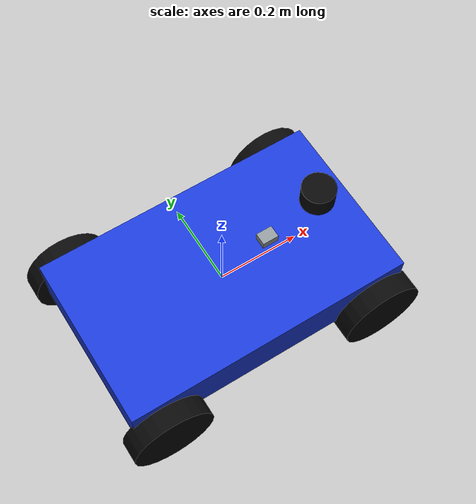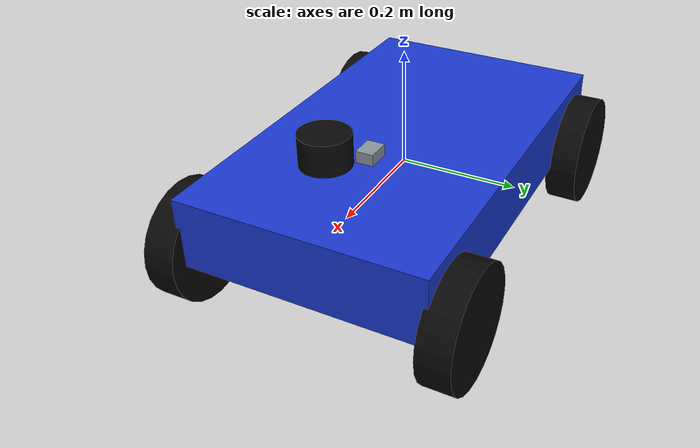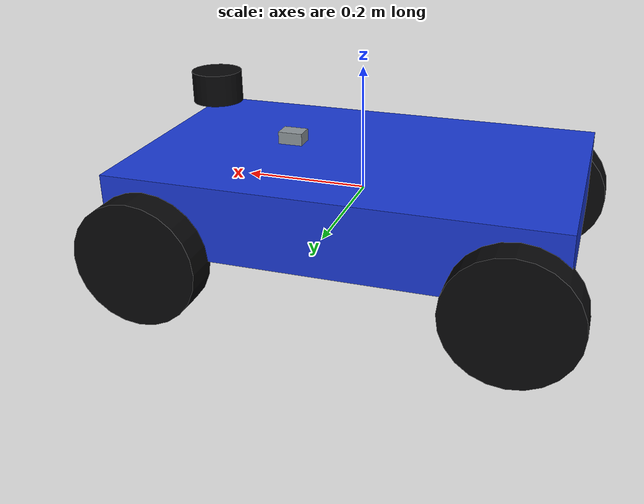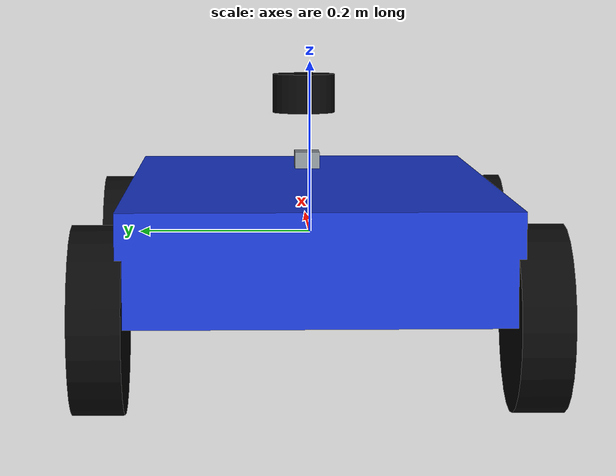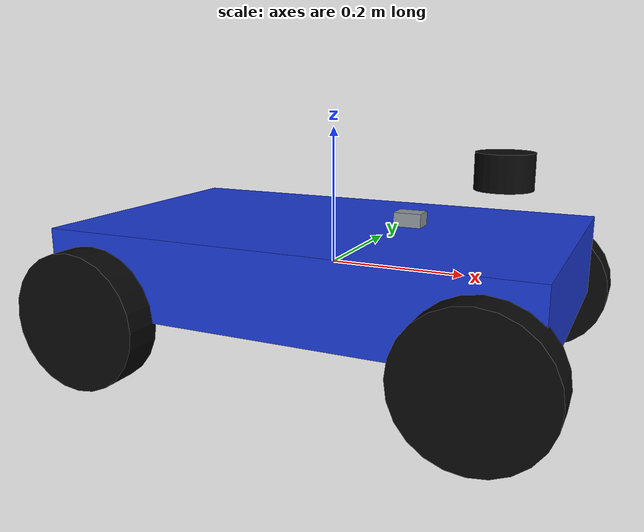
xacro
<?xml version="1.0"?>
<robot name="four_wheel_car" xmlns:xacro="http://www.ros.org/wiki/xacro">
  <xacro:property name="base_length" value="0.70"/>
  <xacro:property name="base_width" value="0.42"/>
  <xacro:property name="base_height" value="0.12"/>
  <xacro:property name="wheel_radius" value="0.10"/>
  <xacro:property name="wheel_width" value="0.055"/>
  <xacro:property name="wheelbase" value="0.56"/>
  <xacro:property name="track" value="0.46"/>
  <xacro:property name="front_x" value="${wheelbase * 0.5}"/>
  <xacro:property name="rear_x" value="${-wheelbase * 0.5}"/>
  <xacro:property name="left_y" value="${track * 0.5}"/>
  <xacro:property name="right_y" value="${-track * 0.5}"/>
  <xacro:property name="wheel_z" value="${-(base_height * 0.5)}"/>

  <material name="body_blue">
    <color rgba="0.10 0.22 0.82 1.0"/>
  </material>
  <material name="dark_grey">
    <color rgba="0.03 0.03 0.035 1.0"/>
  </material>
  <material name="metal_grey">
    <color rgba="0.55 0.58 0.60 1.0"/>
  </material>

  <xacro:macro name="box_inertia" params="mass x y z">
    <inertial>
      <mass value="${mass}"/>
      <inertia
        ixx="${mass * (y * y + z * z) / 12.0}"
        ixy="0.0"
        ixz="0.0"
        iyy="${mass * (x * x + z * z) / 12.0}"
        iyz="0.0"
        izz="${mass * (x * x + y * y) / 12.0}"/>
    </inertial>
  </xacro:macro>

  <xacro:macro name="wheel_inertia" params="mass radius width">
    <inertial>
      <mass value="${mass}"/>
      <inertia
        ixx="${mass * (3.0 * radius * radius + width * width) / 12.0}"
        ixy="0.0"
        ixz="0.0"
        iyy="${0.5 * mass * radius * radius}"
        iyz="0.0"
        izz="${mass * (3.0 * radius * radius + width * width) / 12.0}"/>
    </inertial>
  </xacro:macro>

  <xacro:macro name="wheel_link" params="name">
    <link name="${name}">
      <xacro:wheel_inertia mass="0.45" radius="${wheel_radius}" width="${wheel_width}"/>
      <visual>
        <origin xyz="0 0 0" rpy="1.57079632679 0 0"/>
        <geometry>
          <cylinder radius="${wheel_radius}" length="${wheel_width}"/>
        </geometry>
        <material name="dark_grey"/>
      </visual>
      <collision>
        <origin xyz="0 0 0" rpy="1.57079632679 0 0"/>
        <geometry>
          <cylinder radius="${wheel_radius}" length="${wheel_width}"/>
        </geometry>
      </collision>
    </link>
    <gazebo reference="${name}">
      <mu1>1.0</mu1>
      <mu2>1.0</mu2>
    </gazebo>
  </xacro:macro>

  <link name="base_footprint"/>

  <joint name="base_footprint_joint" type="fixed">
    <parent link="base_footprint"/>
    <child link="base_link"/>
    <origin xyz="0 0 0" rpy="0 0 0"/>
  </joint>

  <link name="base_link">
    <xacro:box_inertia mass="8.0" x="${base_length}" y="${base_width}" z="${base_height}"/>
    <visual>
      <origin xyz="0 0 0" rpy="0 0 0"/>
      <geometry>
        <box size="${base_length} ${base_width} ${base_height}"/>
      </geometry>
      <material name="body_blue"/>
    </visual>
    <collision>
      <origin xyz="0 0 0" rpy="0 0 0"/>
      <geometry>
        <box size="${base_length} ${base_width} ${base_height}"/>
      </geometry>
    </collision>
  </link>

  <link name="imu_link">
    <xacro:box_inertia mass="0.05" x="0.04" y="0.03" z="0.02"/>
    <visual>
      <origin xyz="0 0 0" rpy="0 0 0"/>
      <geometry>
        <box size="0.04 0.03 0.02"/>
      </geometry>
      <material name="metal_grey"/>
    </visual>
  </link>

  <joint name="imu_joint" type="fixed">
    <parent link="base_link"/>
    <child link="imu_link"/>
    <origin xyz="0.12 0 0.075" rpy="0 0 0"/>
  </joint>

  <link name="front_left_steer_link">
    <xacro:box_inertia mass="0.20" x="0.05" y="0.05" z="0.06"/>
    <visual>
      <origin xyz="0 0 0" rpy="0 0 0"/>
      <geometry>
        <box size="0.05 0.05 0.06"/>
      </geometry>
      <material name="metal_grey"/>
    </visual>
  </link>
  <link name="front_right_steer_link">
    <xacro:box_inertia mass="0.20" x="0.05" y="0.05" z="0.06"/>
    <visual>
      <origin xyz="0 0 0" rpy="0 0 0"/>
      <geometry>
        <box size="0.05 0.05 0.06"/>
      </geometry>
      <material name="metal_grey"/>
    </visual>
  </link>

  <joint name="front_left_steer_joint" type="revolute">
    <parent link="base_link"/>
    <child link="front_left_steer_link"/>
    <origin xyz="${front_x} ${left_y} ${wheel_z}" rpy="0 0 0"/>
    <axis xyz="0 0 1"/>
    <limit lower="-0.75" upper="0.75" effort="35.0" velocity="8.0"/>
    <dynamics damping="0.08" friction="0.02"/>
  </joint>

  <joint name="front_right_steer_joint" type="revolute">
    <parent link="base_link"/>
    <child link="front_right_steer_link"/>
    <origin xyz="${front_x} ${right_y} ${wheel_z}" rpy="0 0 0"/>
    <axis xyz="0 0 1"/>
    <limit lower="-0.75" upper="0.75" effort="35.0" velocity="8.0"/>
    <dynamics damping="0.08" friction="0.02"/>
  </joint>

  <xacro:wheel_link name="front_left_wheel_link"/>
  <xacro:wheel_link name="front_right_wheel_link"/>
  <xacro:wheel_link name="rear_left_wheel_link"/>
  <xacro:wheel_link name="rear_right_wheel_link"/>

  <joint name="front_left_wheel_joint" type="continuous">
    <parent link="front_left_steer_link"/>
    <child link="front_left_wheel_link"/>
    <origin xyz="0 0 0" rpy="0 0 0"/>
    <axis xyz="0 1 0"/>
    <limit effort="12.0" velocity="80.0"/>
    <dynamics damping="0.02" friction="0.01"/>
  </joint>

  <joint name="front_right_wheel_joint" type="continuous">
    <parent link="front_right_steer_link"/>
    <child link="front_right_wheel_link"/>
    <origin xyz="0 0 0" rpy="0 0 0"/>
    <axis xyz="0 1 0"/>
    <limit effort="12.0" velocity="80.0"/>
    <dynamics damping="0.02" friction="0.01"/>
  </joint>

  <joint name="rear_left_wheel_joint" type="continuous">
    <parent link="base_link"/>
    <child link="rear_left_wheel_link"/>
    <origin xyz="${rear_x} ${left_y} ${wheel_z}" rpy="0 0 0"/>
    <axis xyz="0 1 0"/>
    <limit effort="0.0" velocity="80.0"/>
    <dynamics damping="0.02" friction="0.01"/>
  </joint>

  <joint name="rear_right_wheel_joint" type="continuous">
    <parent link="base_link"/>
    <child link="rear_right_wheel_link"/>
    <origin xyz="${rear_x} ${right_y} ${wheel_z}" rpy="0 0 0"/>
    <axis xyz="0 1 0"/>
    <limit effort="0.0" velocity="80.0"/>
    <dynamics damping="0.02" friction="0.01"/>
  </joint>

  <gazebo reference="imu_link">
    <sensor name="imu_sensor" type="imu">
      <always_on>true</always_on>
      <update_rate>100</update_rate>
      <topic>/four_wheel_car/imu_gz</topic>
    </sensor>
  </gazebo>

  <gazebo>
    <plugin filename="libfour_wheel_car_system.so" name="four_wheel_car::FourWheelCarSystem">
      <cmd_vel_topic>/cmd_vel</cmd_vel_topic>
      <odom_topic>/odom</odom_topic>
      <imu_topic>/imu/data</imu_topic>
      <joint_state_topic>/joint_states</joint_state_topic>
      <marker_topic>/com_trajectory_marker</marker_topic>
      <base_link>base_link</base_link>
      <odom_child_frame>base_footprint</odom_child_frame>
      <front_left_steer_joint>front_left_steer_joint</front_left_steer_joint>
      <front_right_steer_joint>front_right_steer_joint</front_right_steer_joint>
      <front_left_wheel_joint>front_left_wheel_joint</front_left_wheel_joint>
      <front_right_wheel_joint>front_right_wheel_joint</front_right_wheel_joint>
      <rear_left_wheel_joint>rear_left_wheel_joint</rear_left_wheel_joint>
      <rear_right_wheel_joint>rear_right_wheel_joint</rear_right_wheel_joint>
      <wheel_radius>${wheel_radius}</wheel_radius>
      <front_x>${front_x}</front_x>
      <front_left_y>${left_y}</front_left_y>
      <front_right_y>${right_y}</front_right_y>
      <steer_limit>0.75</steer_limit>
      <drive_speed_limit>45.0</drive_speed_limit>
      <steer_kp>45.0</steer_kp>
      <steer_kd>4.5</steer_kd>
      <drive_kp>1.8</drive_kp>
      <drive_kd>0.35</drive_kd>
      <max_steer_torque>35.0</max_steer_torque>
      <max_drive_torque>12.0</max_drive_torque>
    </plugin>
  </gazebo>

  <!-- LIDAR sensor -->
  <link name="lidar_link">
    <visual>
      <geometry>
        <cylinder radius="0.04" length="0.05"/>
      </geometry>
      <material name="dark_grey"/>
    </visual>
  </link>

  <joint name="lidar_joint" type="fixed">
    <parent link="base_link"/>
    <child link="lidar_link"/>
    <origin xyz="0.25 0 0.15" rpy="0 0 0"/>
  </joint>

  <gazebo reference="lidar_link">
    <sensor name="lidar" type="gpu_lidar">
      <always_on>true</always_on>
      <update_rate>10</update_rate>
      <topic>/scan_gz</topic>
      <gz_frame_id>lidar_link</gz_frame_id>
      <lidar>
        <scan>
          <horizontal>
            <samples>360</samples>
            <resolution>1</resolution>
            <min_angle>-3.14159</min_angle>
            <max_angle>3.14159</max_angle>
          </horizontal>
        </scan>
        <range>
          <min>0.15</min>
          <max>10.0</max>
        </range>
      </lidar>
    </sensor>
  </gazebo>

</robot>
